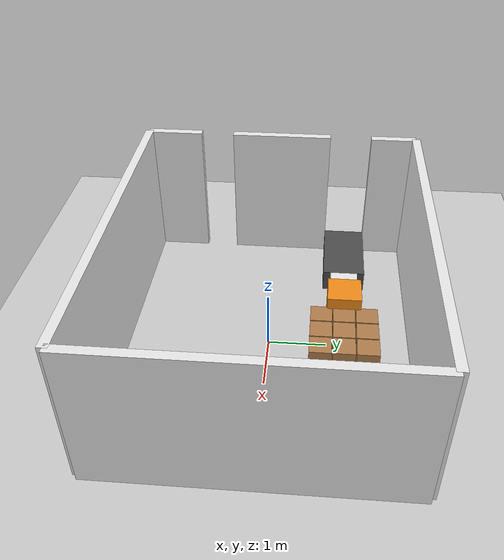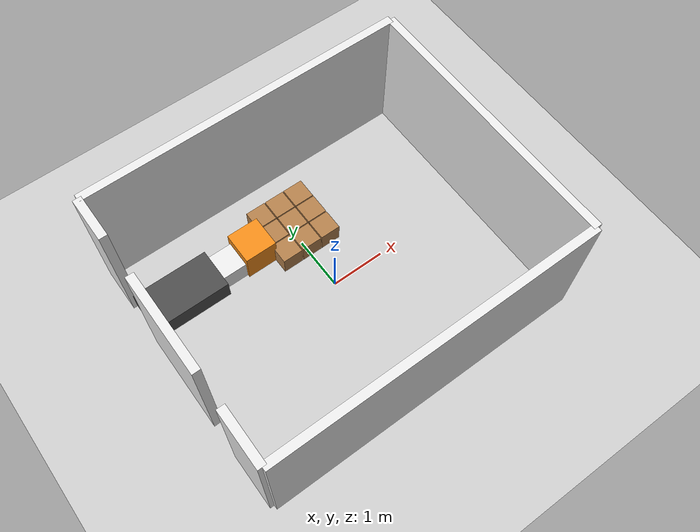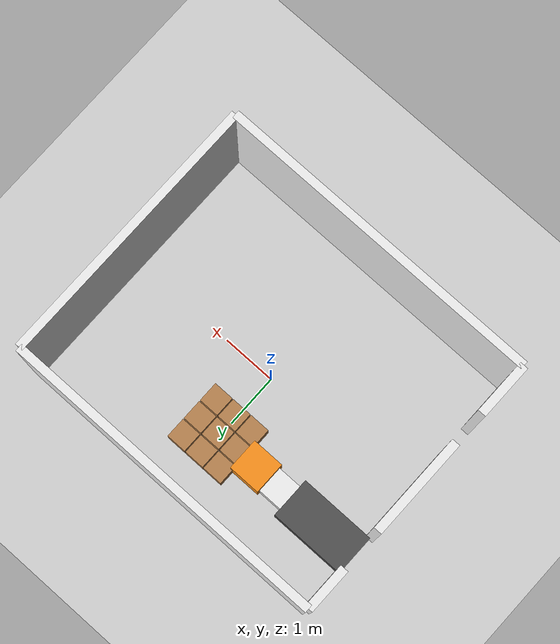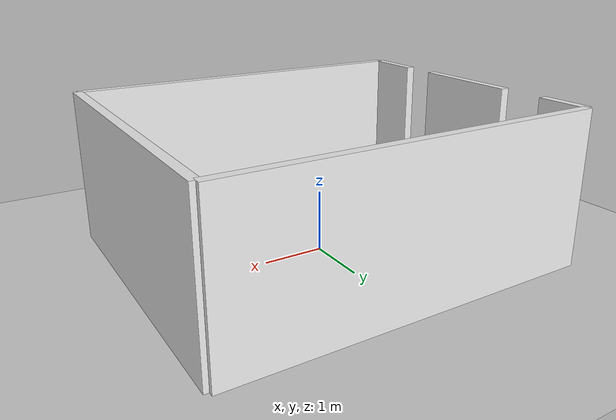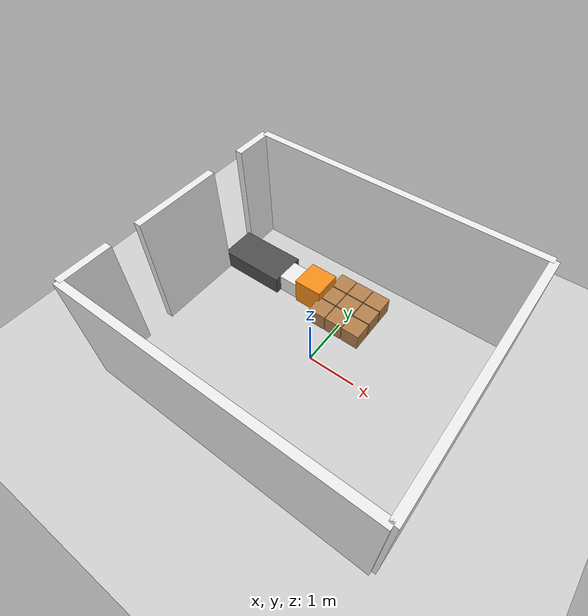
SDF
<?xml version="1.0" ?>
<sdf version="1.6">
  <world name="lost_and_found">

    <include>
      <uri>model://ground_plane</uri>
    </include>
    <include>
      <uri>model://sun</uri>
    </include>

    <model name="environment">
      <static>1</static>
      <pose>0 0 0 0 0 0</pose>

      <!-- 외벽 북쪽 -->
      <link name="wall_north">
        <pose>0 2.5 1.25 0 0 0</pose>
        <collision name="col"><geometry><box><size>6 0.15 2.5</size></box></geometry></collision>
        <visual name="vis"><geometry><box><size>6 0.15 2.5</size></box></geometry>
          <material><script><name>Gazebo/White</name><uri>file://media/materials/scripts/gazebo.material</uri></script></material>
        </visual>
      </link>

      <!-- 외벽 남쪽 -->
      <link name="wall_south">
        <pose>0 -2.5 1.25 0 0 0</pose>
        <collision name="col"><geometry><box><size>6 0.15 2.5</size></box></geometry></collision>
        <visual name="vis"><geometry><box><size>6 0.15 2.5</size></box></geometry>
          <material><script><name>Gazebo/White</name><uri>file://media/materials/scripts/gazebo.material</uri></script></material>
        </visual>
      </link>

      <!-- 서쪽 벽 위쪽 y=2.5~1.68 -->
      <link name="wall_west_top">
        <pose>-3 2.09 1.25 0 0 1.5708</pose>
        <collision name="col"><geometry><box><size>0.82 0.15 2.5</size></box></geometry></collision>
        <visual name="vis"><geometry><box><size>0.82 0.15 2.5</size></box></geometry>
          <material><script><name>Gazebo/White</name><uri>file://media/materials/scripts/gazebo.material</uri></script></material>
        </visual>
      </link>

      <!-- 서쪽 벽 중간 y=0.92~-0.9 -->
      <link name="wall_west_mid">
        <pose>-3 0.01 1.25 0 0 1.5708</pose>
        <collision name="col"><geometry><box><size>1.82 0.15 2.5</size></box></geometry></collision>
        <visual name="vis"><geometry><box><size>1.82 0.15 2.5</size></box></geometry>
          <material><script><name>Gazebo/White</name><uri>file://media/materials/scripts/gazebo.material</uri></script></material>
        </visual>
      </link>

      <!-- 서쪽 벽 아래쪽 y=-1.5~-2.5 -->
      <link name="wall_west_bot">
        <pose>-3 -2.0 1.25 0 0 1.5708</pose>
        <collision name="col"><geometry><box><size>1.0 0.15 2.5</size></box></geometry></collision>
        <visual name="vis"><geometry><box><size>1.0 0.15 2.5</size></box></geometry>
          <material><script><name>Gazebo/White</name><uri>file://media/materials/scripts/gazebo.material</uri></script></material>
        </visual>
      </link>

      <!-- 외벽 동쪽 -->
      <link name="wall_east">
        <pose>3 0 1.25 0 0 1.5708</pose>
        <collision name="col"><geometry><box><size>5 0.15 2.5</size></box></geometry></collision>
        <visual name="vis"><geometry><box><size>5 0.15 2.5</size></box></geometry>
          <material><script><name>Gazebo/White</name><uri>file://media/materials/scripts/gazebo.material</uri></script></material>
        </visual>
      </link>

      <!-- 컨베이어 벨트 (5배 크기) -->
      <link name="conveyor">
        <pose>-2.29 1.3 0.2 0 0 0</pose>
        <collision name="col"><geometry><box><size>1.425 0.765 0.4</size></box></geometry></collision>
        <visual name="vis"><geometry><box><size>1.425 0.765 0.4</size></box></geometry>
          <material><script><name>Gazebo/DarkGrey</name><uri>file://media/materials/scripts/gazebo.material</uri></script></material>
        </visual>
      </link>

      <!-- 작업대 -->
      <link name="worktable">
        <pose>-1.33 1.3 0.2 0 0 0</pose>
        <collision name="col"><geometry><box><size>0.5 0.5 0.4</size></box></geometry></collision>
        <visual name="vis"><geometry><box><size>0.5 0.5 0.4</size></box></geometry>
          <material><script><name>Gazebo/White</name><uri>file://media/materials/scripts/gazebo.material</uri></script></material>
        </visual>
      </link>

      <!-- Dobot (박스로 표시) -->
      <link name="dobot">
        <pose>-0.83 1.3 0.3 0 0 0</pose>
        <collision name="col"><geometry><box><size>0.6 0.6 0.6</size></box></geometry></collision>
        <visual name="vis"><geometry><box><size>0.6 0.6 0.6</size></box></geometry>
          <material><script><name>Gazebo/Orange</name><uri>file://media/materials/scripts/gazebo.material</uri></script></material>
        </visual>
      </link>

      <!-- 창고 슬롯 3x3 -->
      <!-- row 0 (y=1.7) -->
      <link name="slot_0_0">
        <pose>-0.38 1.7 0.2 0 0 0</pose>
        <collision name="col"><geometry><box><size>0.38 0.38 0.38</size></box></geometry></collision>
        <visual name="vis"><geometry><box><size>0.38 0.38 0.38</size></box></geometry>
          <material><script><name>Gazebo/Wood</name><uri>file://media/materials/scripts/gazebo.material</uri></script></material>
        </visual>
      </link>
      <link name="slot_0_1">
        <pose>0.02 1.7 0.2 0 0 0</pose>
        <collision name="col"><geometry><box><size>0.38 0.38 0.38</size></box></geometry></collision>
        <visual name="vis"><geometry><box><size>0.38 0.38 0.38</size></box></geometry>
          <material><script><name>Gazebo/Wood</name><uri>file://media/materials/scripts/gazebo.material</uri></script></material>
        </visual>
      </link>
      <link name="slot_0_2">
        <pose>0.42 1.7 0.2 0 0 0</pose>
        <collision name="col"><geometry><box><size>0.38 0.38 0.38</size></box></geometry></collision>
        <visual name="vis"><geometry><box><size>0.38 0.38 0.38</size></box></geometry>
          <material><script><name>Gazebo/Wood</name><uri>file://media/materials/scripts/gazebo.material</uri></script></material>
        </visual>
      </link>

      <!-- row 1 (y=1.3) -->
      <link name="slot_1_0">
        <pose>-0.38 1.3 0.2 0 0 0</pose>
        <collision name="col"><geometry><box><size>0.38 0.38 0.38</size></box></geometry></collision>
        <visual name="vis"><geometry><box><size>0.38 0.38 0.38</size></box></geometry>
          <material><script><name>Gazebo/Wood</name><uri>file://media/materials/scripts/gazebo.material</uri></script></material>
        </visual>
      </link>
      <link name="slot_1_1">
        <pose>0.02 1.3 0.2 0 0 0</pose>
        <collision name="col"><geometry><box><size>0.38 0.38 0.38</size></box></geometry></collision>
        <visual name="vis"><geometry><box><size>0.38 0.38 0.38</size></box></geometry>
          <material><script><name>Gazebo/Wood</name><uri>file://media/materials/scripts/gazebo.material</uri></script></material>
        </visual>
      </link>
      <link name="slot_1_2">
        <pose>0.42 1.3 0.2 0 0 0</pose>
        <collision name="col"><geometry><box><size>0.38 0.38 0.38</size></box></geometry></collision>
        <visual name="vis"><geometry><box><size>0.38 0.38 0.38</size></box></geometry>
          <material><script><name>Gazebo/Wood</name><uri>file://media/materials/scripts/gazebo.material</uri></script></material>
        </visual>
      </link>

      <!-- row 2 (y=0.9) -->
      <link name="slot_2_0">
        <pose>-0.38 0.9 0.2 0 0 0</pose>
        <collision name="col"><geometry><box><size>0.38 0.38 0.38</size></box></geometry></collision>
        <visual name="vis"><geometry><box><size>0.38 0.38 0.38</size></box></geometry>
          <material><script><name>Gazebo/Wood</name><uri>file://media/materials/scripts/gazebo.material</uri></script></material>
        </visual>
      </link>
      <link name="slot_2_1">
        <pose>0.02 0.9 0.2 0 0 0</pose>
        <collision name="col"><geometry><box><size>0.38 0.38 0.38</size></box></geometry></collision>
        <visual name="vis"><geometry><box><size>0.38 0.38 0.38</size></box></geometry>
          <material><script><name>Gazebo/Wood</name><uri>file://media/materials/scripts/gazebo.material</uri></script></material>
        </visual>
      </link>
      <link name="slot_2_2">
        <pose>0.42 0.9 0.2 0 0 0</pose>
        <collision name="col"><geometry><box><size>0.38 0.38 0.38</size></box></geometry></collision>
        <visual name="vis"><geometry><box><size>0.38 0.38 0.38</size></box></geometry>
          <material><script><name>Gazebo/Wood</name><uri>file://media/materials/scripts/gazebo.material</uri></script></material>
        </visual>
      </link>
    </model>
  </world>
</sdf>
